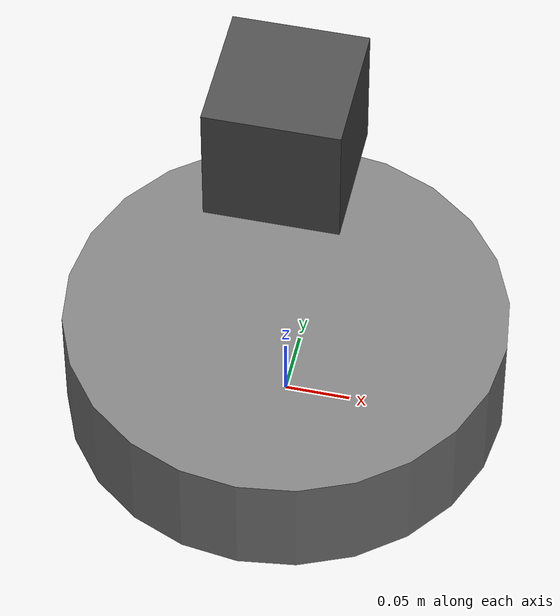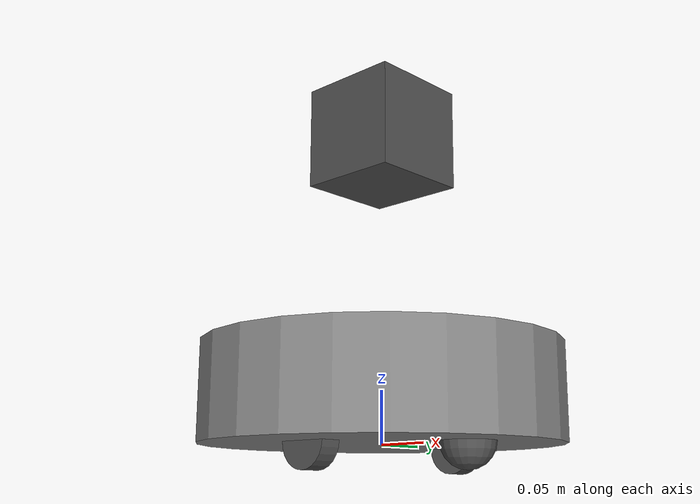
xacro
<?xml version="1.0"?>

<robot name="roomba" xmlns:xacro="http://ros.org/wiki/xacro">

    <xacro:property name="base_radius" value="0.17"/>
    <xacro:property name="base_height" value="0.092"/>
    <xacro:property name="base_mass" value="2.0"/>
    <xacro:property name="wheel_width" value="0.02"/>
    <xacro:property name="wheel_radius" value="0.025"/>
    <xacro:property name="wheel_mass" value="0.3"/>
    <!-- caster + battery -->
    <xacro:property name="caster_mass" value="1.0"/>

    <link name="base_footprint">
    </link>

    <joint name="footprint_to_base_joint" type="fixed">
        <parent link="base_footprint"/>
        <child link="base_link"/>
        <origin xyz="0 0 0" rpy="0 0 0"/>
    </joint>

    <link name="base_link">
        <visual>
            <origin xyz="0 0 ${base_height/2}"/>
            <geometry>
                <cylinder length="${base_height}" radius="${base_radius}"/>
            </geometry>
            <material name="body_color">
                <color rgba="0.5 0.5 0.5 1.0"/>
            </material>
        </visual>
        <collision>
            <origin xyz="0 0 ${base_height/2}"/>
            <geometry>
                <cylinder length="${base_height}" radius="${base_radius}"/>
            </geometry>
        </collision>
        <inertial>
            <origin xyz="0 0 ${base_height/2}"/>
            <mass value="${base_mass}"/>
            <inertia ixx="${base_mass * base_radius * base_radius / 4.0 + base_mass * base_height * base_height / 12.0}"
                     ixy="0.0"
                     ixz="0.0"
                     iyy="${base_mass * base_radius * base_radius / 4.0 + base_mass * base_height * base_height / 12.0}"
                     iyz="0.0"
                     izz="${base_mass * base_radius * base_radius / 2.0}"/>
        </inertial>
    </link>

    <xacro:macro name="add_wheel" params="*origin prefix parent_link">
        <joint name="${prefix}_wheel_joint" type="continuous">
            <xacro:insert_block name="origin"/>
            <axis xyz="0 1 0"/>
            <parent link="${parent_link}"/>
            <child link="${prefix}_wheel_link"/>
            <limit effort="1.0" velocity="${0.5 / wheel_radius}"/>
        </joint>
        <link name="${prefix}_wheel_link">
            <visual>
                <origin xyz="0 ${wheel_width/2} 0" rpy="${pi/2} 0 0"/>
                <geometry>
                    <cylinder length="${wheel_width}" radius="${wheel_radius}"/>
                </geometry>
                <material name="wheel_color">
                    <color rgba="0.3 0.3 0.3 1.0"/>
                </material>
            </visual>
            <collision>
                <origin xyz="0 ${wheel_radius/2} 0" rpy="${pi/2} 0 0"/>
                <geometry>
                    <cylinder length="${wheel_width}" radius="${wheel_radius}"/>
                </geometry>
            </collision>
            <inertial>
                <origin xyz="0 ${wheel_width/2} 0"/>
                <mass value="${wheel_mass}"/>
                <inertia ixx="${wheel_mass * wheel_radius * wheel_radius / 4.0 + wheel_mass * wheel_width * wheel_width / 12.0}"
                        ixy="0.0"
                        ixz="0.0"
                        iyy="${wheel_mass * wheel_radius * wheel_radius / 2.0}"
                        iyz="0.0"
                        izz="${wheel_mass * wheel_radius * wheel_radius / 4.0 + wheel_mass * wheel_width * wheel_width / 12.0}"/>
            </inertial>
        </link>
    </xacro:macro>

    <xacro:add_wheel prefix="left" parent_link="base_link">
        <origin xyz="0 0.1 0" rpy="0 0 0"/>
    </xacro:add_wheel>

    <xacro:add_wheel prefix="right" parent_link="base_link">
        <origin xyz="0 -0.1 0" rpy="0 0 0"/>
    </xacro:add_wheel>

    <joint name="base_to_caster_joint" type="fixed">
        <parent link="base_link"/>
        <child link="caster_link"/>
        <origin xyz="0.1 0 0"/>
    </joint>

    <link name="caster_link">
        <visual>
            <origin xyz="0 0 0"/>
            <geometry>
                <sphere radius="${wheel_radius}"/>
            </geometry>
            <material name="caster_color">
                <color rgba="0.3 0.3 0.3 1.0"/>
            </material>
        </visual>
        <collision>
            <origin xyz="0 0 0"/>
            <geometry>
                <sphere radius="${wheel_radius}"/>
            </geometry>
        </collision>
        <inertial>
            <origin xyz="0 0 0"/>
            <mass value="${caster_mass}"/>
            <inertia ixx="${caster_mass * wheel_radius * wheel_radius * 2.0 / 5.0}"
                     ixy="0.0"
                     ixz="0.0"
                     iyy="${caster_mass * wheel_radius * wheel_radius * 2.0 / 5.0}"
                     iyz="0.0"
                     izz="${caster_mass * wheel_radius * wheel_radius * 2.0 / 5.0}"/>
        </inertial>
    </link>

    <!-- laser -->
    <joint name="base_to_laser_link" type="fixed">
        <origin xyz="0 0 0.3"/>
        <parent link="base_link"/>
        <child link="laser_link"/>
    </joint>

    <link name="laser_link">
        <visual>
            <origin xyz="0 0 0"/>
            <geometry>
                <box size="0.1 0.1 0.1"/>
            </geometry>
            <material name="laser_color">
                <color rgba="0.3 0.3 0.3 1.0"/>
            </material>
        </visual>
        <collision>
            <origin xyz="0 0 0"/>
            <geometry>
                <box size="0.1 0.1 0.1"/>
            </geometry>
        </collision>
        <inertial>
            <origin xyz="0 0 0"/>
            <mass value="0.3"/>
            <inertia ixx="1e-6"
                     ixy="0.0"
                     ixz="0.0"
                     iyy="1e-6"
                     iyz="0.0"
                     izz="1e-6"/>
        </inertial>
    </link>

    <xacro:include filename="$(find roomba_description)/urdf/roomba.ros2_control.xacro"/>
    <xacro:roomba_ros2_control name="roomba"/>
    <xacro:include filename="$(find roomba_description)/urdf/roomba.gazebo.xacro"/>
    <xacro:roomba_gazebo/>

</robot>
